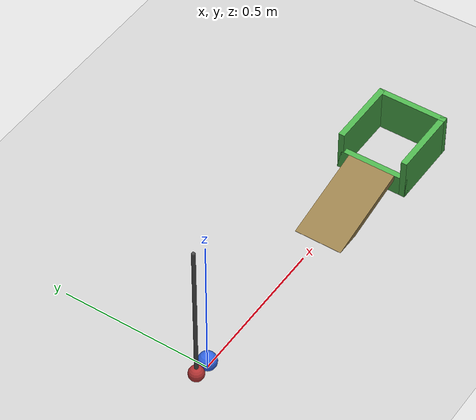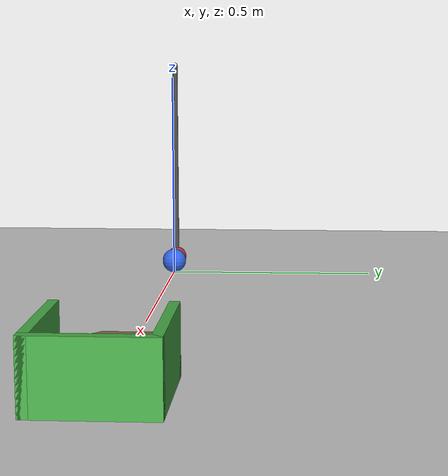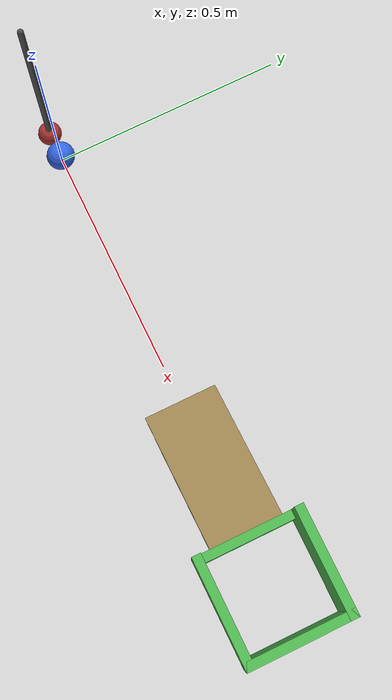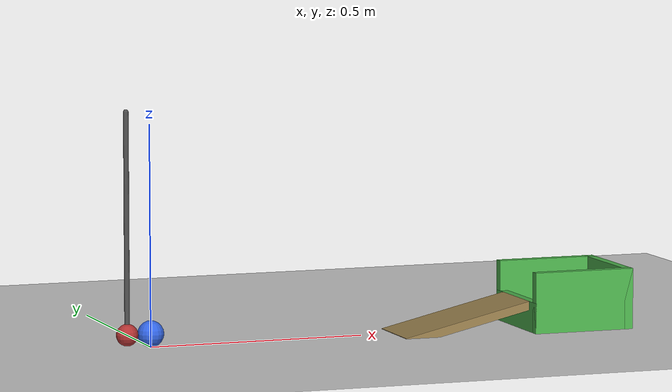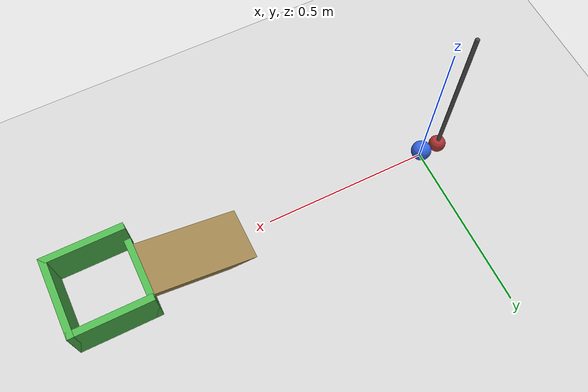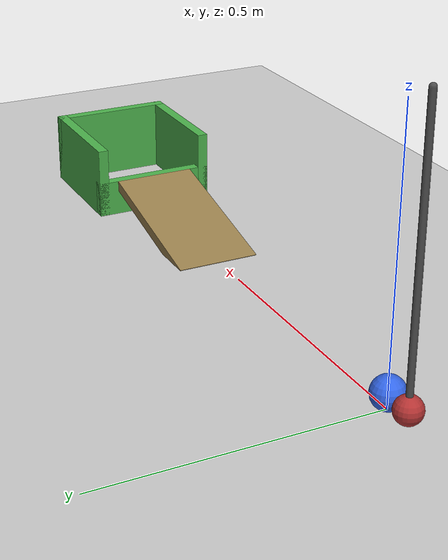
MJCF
<mujoco model="pendulum_ball_cup">
  <option timestep="0.002"/>
  <worldbody>
    <light name="sun" pos="0.5 -1 2" dir="0 0.5 -1"/>
    <geom name="floor" type="plane" size="3 3 0.1" rgba="0.8 0.8 0.8 1"/>

    <body name="pendulum" pos="-0.055 0 0.53">
      <joint name="pendulum_hinge" type="hinge" axis="0 1 0" damping="0"/>
      <geom name="pendulum_rod" type="capsule" fromto="0 0 0 0 0 -0.475" size="0.006" rgba="0.3 0.3 0.3 1"/>
      <geom name="pendulum_bob" type="sphere" pos="0 0 -0.5" size="0.025" mass="0.5" rgba="0.7 0.2 0.2 1"/>
    </body>

    <body name="ball" pos="0 0 0.03">
      <freejoint name="ball_free"/>
      <geom name="ball" type="sphere" size="0.03" mass="0.05" condim="6" friction="0.8 0.005 0.001" rgba="0.2 0.4 0.9 1"/>
    </body>

    <body name="ramp" pos="0 0 0">
      <geom name="ramp" type="box" pos="0.73227 0 0.02526" euler="0 -13.134 0" size="0.15403 0.08 0.01" rgba="0.6 0.5 0.3 1"/>
    </body>

    <body name="cup" pos="0 0 0">
      <geom name="cup_near" type="box" pos="0.89 0 0.035" size="0.01 0.12 0.035" rgba="0.3 0.7 0.3 1"/>
      <geom name="cup_far" type="box" pos="1.11 0 0.07" size="0.01 0.12 0.07" rgba="0.3 0.7 0.3 1"/>
      <geom name="cup_left" type="box" pos="1.0 0.11 0.07" size="0.12 0.01 0.07" rgba="0.3 0.7 0.3 1"/>
      <geom name="cup_right" type="box" pos="1.0 -0.11 0.07" size="0.12 0.01 0.07" rgba="0.3 0.7 0.3 1"/>
    </body>
  </worldbody>

  <keyframe>
    <key name="start" qpos="1.047 0 0 0.03 1 0 0 0" qvel="0 0 0 0 0 0 0"/>
  </keyframe>
</mujoco>
